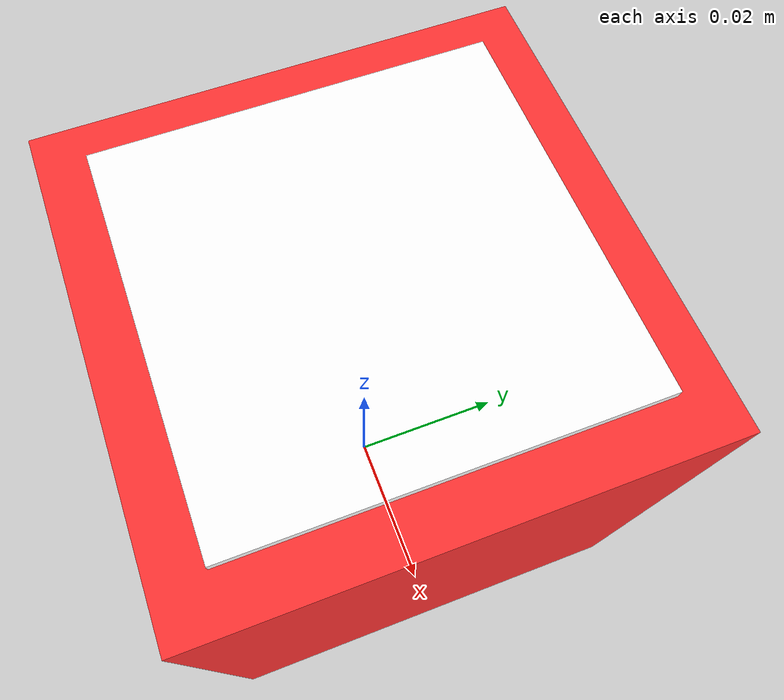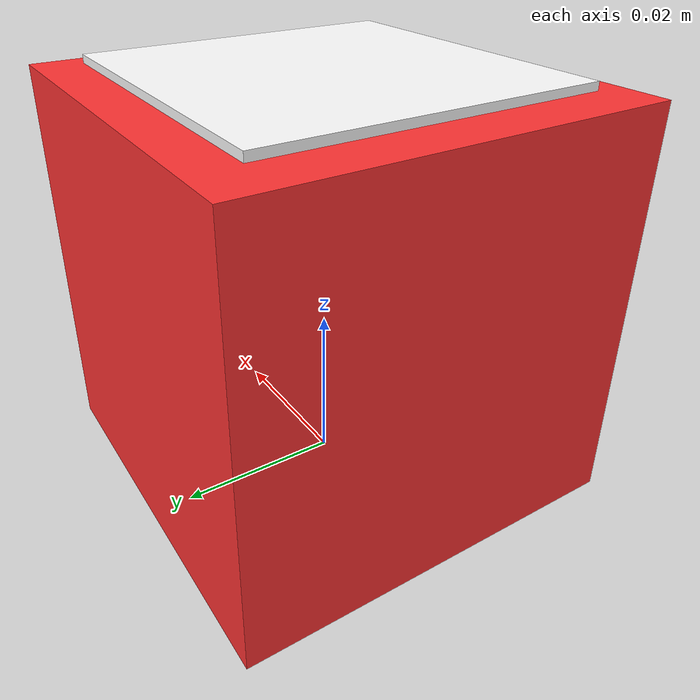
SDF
<?xml version="1.0" ?>
<sdf version="1.6">
  <model name="aruco_cube">
    <static>false</static>
    <link name="link">
      <pose>0 0 0.025 0 0 0</pose>
      <inertial>
        <mass>0.05</mass>
        <inertia>
          <ixx>0.00001</ixx><iyy>0.00001</iyy><izz>0.00001</izz>
        </inertia>
      </inertial>
      <collision name="collision">
        <geometry>
          <box>
            <size>0.05 0.05 0.05</size>
          </box>
        </geometry>
      </collision>
      <visual name="visual">
        <geometry>
          <box>
            <size>0.05 0.05 0.05</size>
          </box>
        </geometry>
        <material>
          <ambient>0.9 0.2 0.2 1</ambient>
          <diffuse>1 0.2 0.2 1</diffuse>
        </material>
      </visual>
      <visual name="marker_top">
        <pose>0 0 0.026 0 0 0</pose>
        <geometry>
          <box>
            <size>0.04 0.04 0.001</size>
          </box>
        </geometry>
        <material>
          <ambient>1 1 1 1</ambient>
          <diffuse>1 1 1 1</diffuse>
        </material>
      </visual>
    </link>
  </model>
</sdf>
